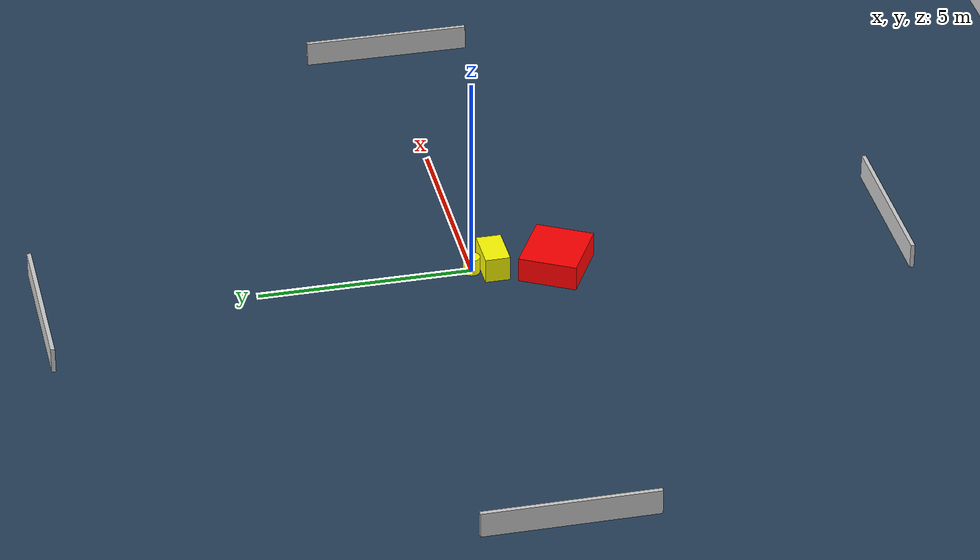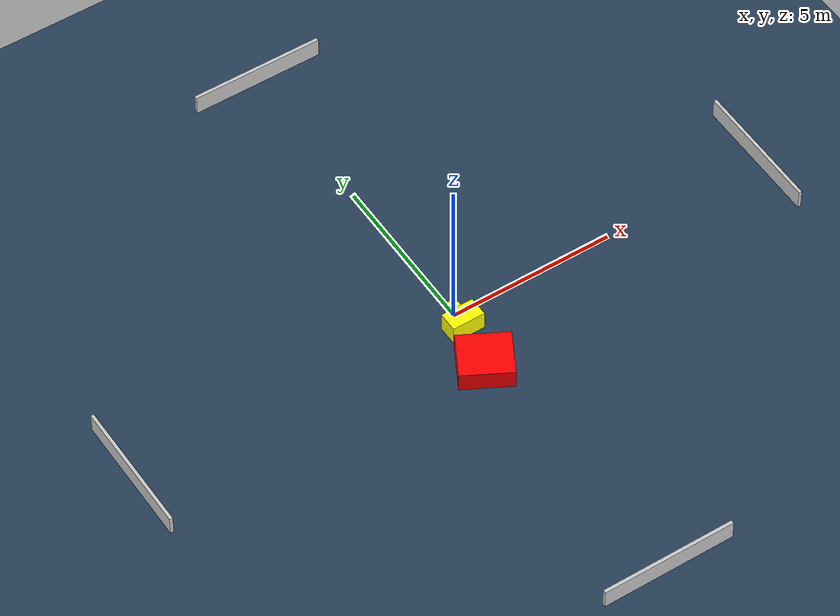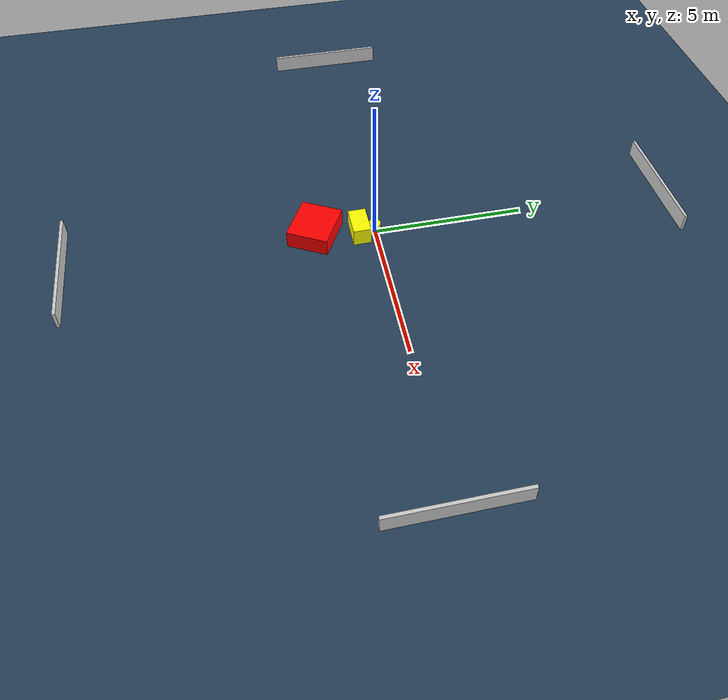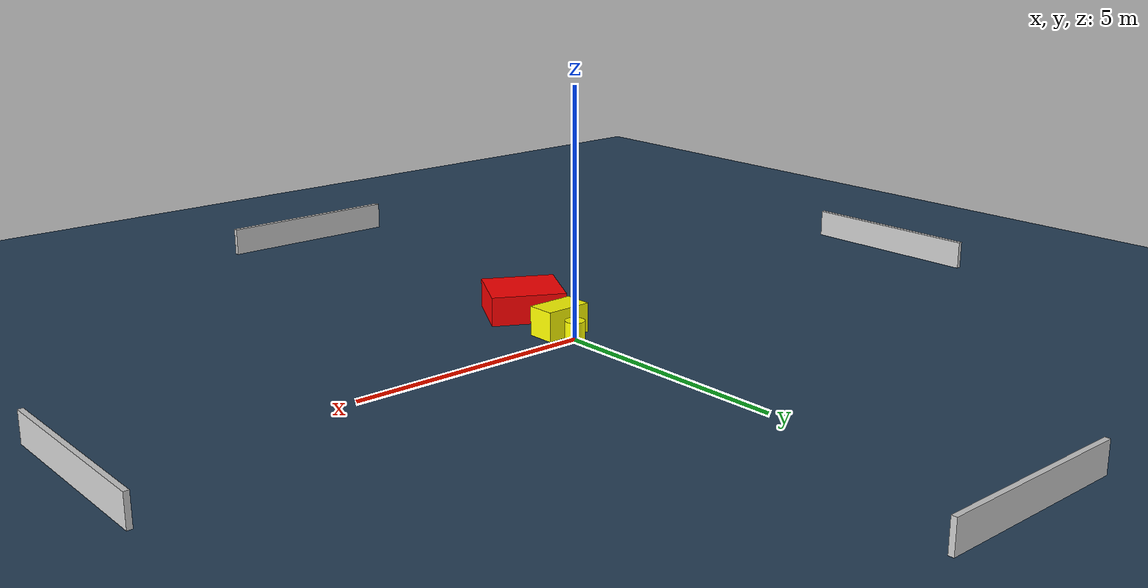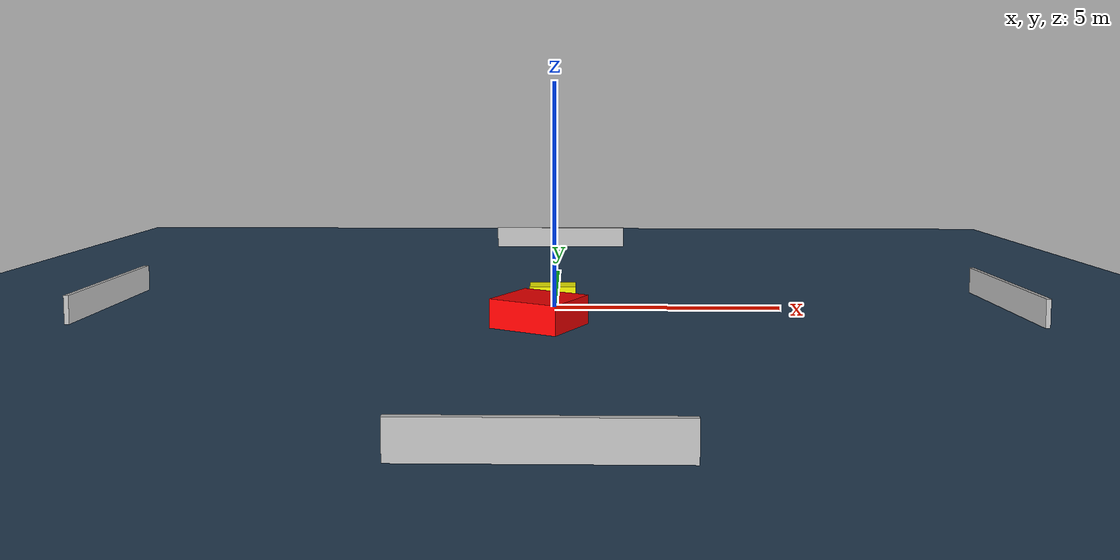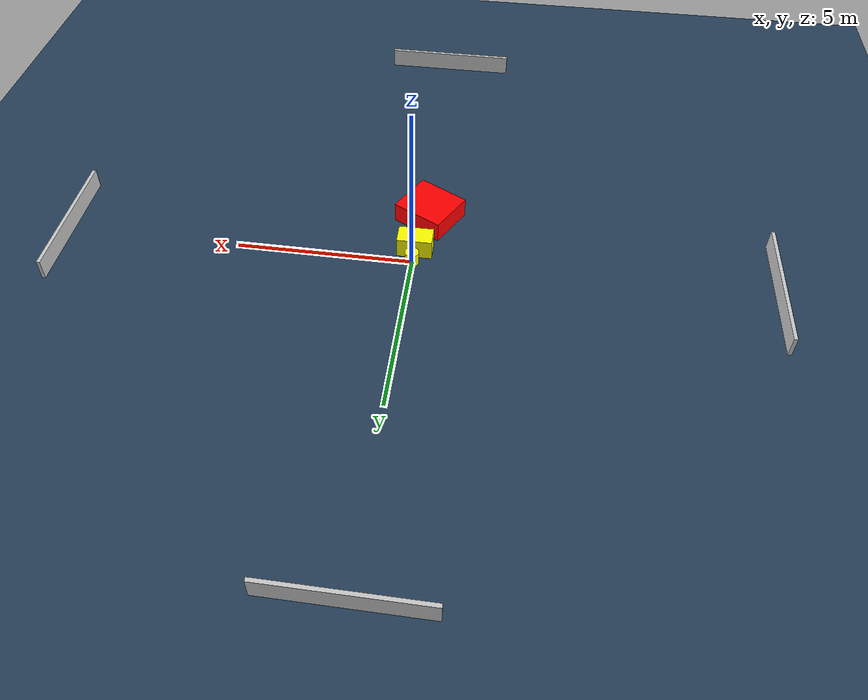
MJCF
<?xml version="1.0" ?>
<mujoco model="generated_environment">
  <option timestep="0.01" integrator="RK4" cone="elliptic"/>
  <default>
    <geom density="1"/>
  </default>
  <asset>
    <texture builtin="gradient" height="3072" name="skybox" rgb1="0.3 0.5 0.7" rgb2="0 0 0" type="skybox" width="512"/>
    <texture builtin="checker" height="300" name="groundplane" rgb1="0.2 0.3 0.4" rgb2="0.1 0.2 0.3" type="2d" width="300"/>
    <material name="groundplane" reflectance="0.2" texrepeat="5 5" texture="groundplane"/>
  </asset>
  <worldbody>
    <light dir="0 0 -1" directional="true" pos="0 0 1.5"/>
    <geom condim="3" friction="0.5 0.005 0.001" material="groundplane" name="floor" pos="0 0 0" size="0 0 0.05" type="plane"/>
    <body name="walls">
      <geom name="wall_1" condim="4" pos="-10.0 0.0 0.3" rgba="0.800000011920929 0.800000011920929 0.800000011920929 1.0" size="0.05 2.0 0.3" type="box"/>
      <geom name="wall_2" condim="4" pos="10.0 0.0 0.3" rgba="0.800000011920929 0.800000011920929 0.800000011920929 1.0" size="0.05 2.0 0.3" type="box"/>
      <geom name="wall_3" condim="4" pos="0.0 -10.0 0.3" rgba="0.800000011920929 0.800000011920929 0.800000011920929 1.0" size="2.0 0.05 0.3" type="box"/>
      <geom name="wall_4" condim="4" pos="0.0 10.0 0.3" rgba="0.800000011920929 0.800000011920929 0.800000011920929 1.0" size="2.0 0.05 0.3" type="box"/>
    </body>
    <body name="robot">
      <joint name="joint_x" type="slide" pos="0 0 0" axis="1 0 0"/>
      <joint name="joint_y" type="slide" pos="0 0 0" axis="0 1 0"/>
      <geom name="robot" type="cylinder" pos="0.0 0.0 0.2" size="0.2 0.2 0.0" mass="5.0" friction="1.0 0.005 0.0001" condim="4" rgba="1.0 1.0 0.0 1.0"/>
    </body>
    <body name="obstacle_1_movable">
      <geom name="obstacle_1_movable" condim="4" pos="-0.030591034901520084 -0.5018783905409594 0.3" euler="0 0 0.3908289326284953" friction="0.0 0.005 0.001" rgba="1.0 1.0 0.0 1.0" size="0.4957836595177598 0.2931175606264114 0.3" type="box" mass="0.1"/>
      <joint type="free"/>
    </body>
    <body name="obstacle_2_static">
      <geom name="obstacle_2_static" condim="4" pos="-0.2773089745227522 -1.943375893938281 0.3" euler="0 0 61.29987721160086" friction="0.0 0.005 0.001" rgba="1.0 0.0 0.0 1.0" size="0.6897390954277776 0.7657397922714932 0.3" type="box"/>
    </body>
  </worldbody>
  <actuator>
    <motor name="actuator_x" joint="joint_x" gear="1" ctrlrange="-1 1"/>
    <motor name="actuator_y" joint="joint_y" gear="1" ctrlrange="-1 1"/>
  </actuator>
</mujoco>
